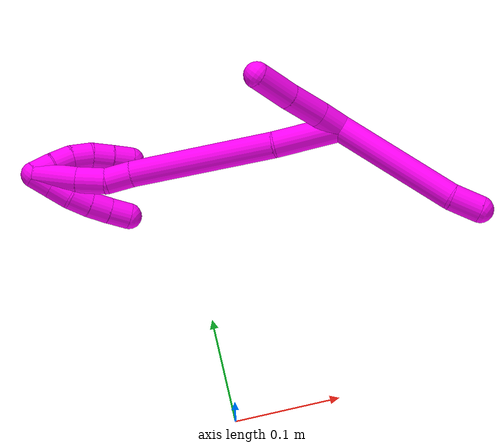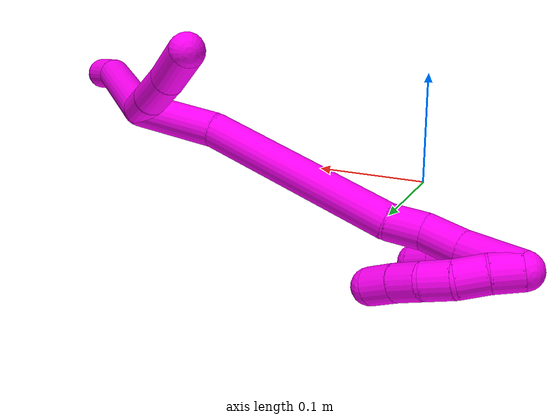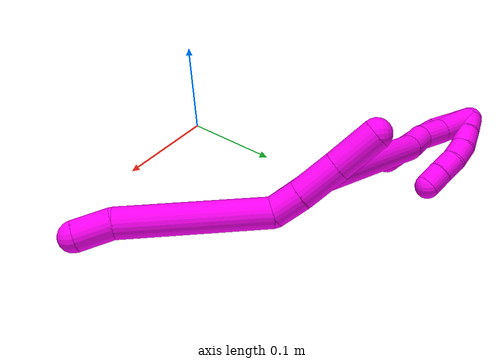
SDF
<sdf version="1.7">
 <world name="default">
  <model name="photoneo_s_sensor">
   <static>1</static>
   <pose>0 0 2 1.57079 1.57079 3.14159</pose>
   <link name="link">
    <inertial><mass>0.1</mass></inertial>
    <sensor name="sensor" type="depth">
     <update_rate>30</update_rate>
     <camera>
      <horizontal_fov>1.22</horizontal_fov>
      <image><width>1920</width><height>1200</height><format>B8G8R8</format></image>
      <clip><near>0.1</near><far>4</far></clip>
      <depth_camera><output>points</output></depth_camera>
     </camera>
     <plugin name="camera_plugin" filename="libgazebo_ros_depth_camera.so">
      <baseline>0.2</baseline>
      <alwaysOn>1</alwaysOn>
      <updateRate>0.0</updateRate>
      <cameraName>camera_ir</cameraName>
      <imageTopicName>/camera/color/image_raw</imageTopicName>
      <cameraInfoTopicName>/camera/color/camera_info</cameraInfoTopicName>
      <depthImageTopicName>/camera/depth/image_raw</depthImageTopicName>
      <depthImageCameraInfoTopicName>/camera/depth/camera_info</depthImageCameraInfoTopicName>
      <pointCloudTopicName>/camera/depth/points</pointCloudTopicName>
      <frameName>fr_optical</frameName>
      <pointCloudCutoff>0.1</pointCloudCutoff>
      <pointCloudCutoffMax>2.0</pointCloudCutoffMax>
      <distortionK1>0</distortionK1>
      <distortionK2>0</distortionK2>
      <distortionK3>0</distortionK3>
      <distortionT1>0</distortionT1>
      <distortionT2>0</distortionT2>
      <CxPrime>0</CxPrime>
      <Cx>0</Cx>
      <Cy>0</Cy>
      <focalLength>0</focalLength>
      <hackBaseline>0</hackBaseline>
     </plugin>
    </sensor>
   </link>
  </model>
  <model name="bin">
   <static>1</static>
   <link name="bottom">
    <collision name="collision-bottom">
     <pose>0 0 -0.01 0 -0 0</pose>
     <geometry><box><size>0.8 0.6 0.02</size></box></geometry>
     <surface>
      <friction><ode><mu>100</mu><mu2>100</mu2></ode></friction>
      <contact><collide_bitmask>65535</collide_bitmask></contact>
     </surface>
    </collision>
   </link>
   <link name="west_wall">
    <collision name="collision-west_wall">
     <pose>-0.41 0 0.1 0 -0 0</pose>
     <geometry><box><size>0.02 0.6 0.2</size></box></geometry>
     <surface>
      <friction><ode><mu>100</mu><mu2>100</mu2></ode></friction>
      <contact><collide_bitmask>65535</collide_bitmask></contact>
     </surface>
    </collision>
   </link>
   <link name="east_wall">
    <collision name="collision-east_wall">
     <pose>0.41 0 0.1 0 -0 0</pose>
     <geometry><box><size>0.02 0.6 0.2</size></box></geometry>
     <surface>
      <friction><ode><mu>100</mu><mu2>100</mu2></ode></friction>
      <contact><collide_bitmask>65535</collide_bitmask></contact>
     </surface>
    </collision>
   </link>
   <link name="south_wall">
    <collision name="collision-south_wall">
     <pose>0 -0.31 0.1 0 -0 0</pose>
     <geometry><box><size>0.8 0.02 0.2</size></box></geometry>
     <surface>
      <friction><ode><mu>100</mu><mu2>100</mu2></ode></friction>
      <contact><collide_bitmask>65535</collide_bitmask></contact>
     </surface>
    </collision>
   </link>
   <link name="north_wall">
    <collision name="collision-north_wall">
     <pose>0 0.31 0.1 0 -0 0</pose>
     <geometry><box><size>0.8 0.02 0.2</size></box></geometry>
     <surface>
      <friction><ode><mu>100</mu><mu2>100</mu2></ode></friction>
      <contact><collide_bitmask>65535</collide_bitmask></contact>
     </surface>
    </collision>
   </link>
  </model>
  <model name="10">
   <static>0</static>
   <link name="10">
    <collision name="collision-cylinder-e_1_2_8">
     <pose>-0.001011 -0.006087 -0.060129 3.04071 -0.01672 -0.328212</pose>
     <geometry><cylinder><radius>0.0125</radius><length>0.12089</length></cylinder></geometry>
     <surface>
      <friction><ode><mu>1.16</mu><mu2>1.16</mu2><slip1>0</slip1><slip2>0</slip2></ode></friction>
      <contact><ode><kp>1e+06</kp><kd>1</kd><max_vel>0</max_vel><min_depth>0.001</min_depth></ode></contact>
     </surface>
    </collision>
    <visual name="visual-cylinder-e_1_2_8">
     <pose>-0.001011 -0.006087 -0.060129 3.04071 -0.01672 -0.328212</pose>
     <geometry><cylinder><radius>0.0125</radius><length>0.12089</length></cylinder></geometry>
     <material><ambient>1 0 0.964706 1</ambient></material>
    </visual>
    <collision name="collision-cylinder-e_2_8_6">
     <pose>0.001606 -0.013552 -0.134287 3.04364 0.251844 2.40278</pose>
     <geometry><cylinder><radius>0.0125</radius><length>0.02911</length></cylinder></geometry>
     <surface>
      <friction><ode><mu>1.16</mu><mu2>1.16</mu2><slip1>0</slip1><slip2>0</slip2></ode></friction>
      <contact><ode><kp>1e+06</kp><kd>1</kd><max_vel>0</max_vel><min_depth>0.001</min_depth></ode></contact>
     </surface>
    </collision>
    <visual name="visual-cylinder-e_2_8_6">
     <pose>0.001606 -0.013552 -0.134287 3.04364 0.251844 2.40278</pose>
     <geometry><cylinder><radius>0.0125</radius><length>0.02911</length></cylinder></geometry>
     <material><ambient>1 0 0.964706 1</ambient></material>
    </visual>
    <collision name="collision-cylinder-e_1_2_9">
     <pose>-0.005309 -0.002892 0.011038 0.256263 -0.435445 -0.05699</pose>
     <geometry><cylinder><radius>0.0125</radius><length>0.025171</length></cylinder></geometry>
     <surface>
      <friction><ode><mu>1.16</mu><mu2>1.16</mu2><slip1>0</slip1><slip2>0</slip2></ode></friction>
      <contact><ode><kp>1e+06</kp><kd>1</kd><max_vel>0</max_vel><min_depth>0.001</min_depth></ode></contact>
     </surface>
    </collision>
    <visual name="visual-cylinder-e_1_2_9">
     <pose>-0.005309 -0.002892 0.011038 0.256263 -0.435445 -0.05699</pose>
     <geometry><cylinder><radius>0.0125</radius><length>0.025171</length></cylinder></geometry>
     <material><ambient>1 0 0.964706 1</ambient></material>
    </visual>
    <collision name="collision-cylinder-e_2_9_10">
     <pose>-0.019501 -0.010116 0.036934 0.283644 -0.521119 -0.0761</pose>
     <geometry><cylinder><radius>0.0125</radius><length>0.035689</length></cylinder></geometry>
     <surface>
      <friction><ode><mu>1.16</mu><mu2>1.16</mu2><slip1>0</slip1><slip2>0</slip2></ode></friction>
      <contact><ode><kp>1e+06</kp><kd>1</kd><max_vel>0</max_vel><min_depth>0.001</min_depth></ode></contact>
     </surface>
    </collision>
    <visual name="visual-cylinder-e_2_9_10">
     <pose>-0.019501 -0.010116 0.036934 0.283644 -0.521119 -0.0761</pose>
     <geometry><cylinder><radius>0.0125</radius><length>0.035689</length></cylinder></geometry>
     <material><ambient>1 0 0.964706 1</ambient></material>
    </visual>
    <collision name="collision-cylinder-e_3_10_5">
     <pose>-0.038135 -0.020358 0.067697 0.35583 -0.521506 -0.095886</pose>
     <geometry><cylinder><radius>0.0125</radius><length>0.03914</length></cylinder></geometry>
     <surface>
      <friction><ode><mu>1.16</mu><mu2>1.16</mu2><slip1>0</slip1><slip2>0</slip2></ode></friction>
      <contact><ode><kp>1e+06</kp><kd>1</kd><max_vel>0</max_vel><min_depth>0.001</min_depth></ode></contact>
     </surface>
    </collision>
    <visual name="visual-cylinder-e_3_10_5">
     <pose>-0.038135 -0.020358 0.067697 0.35583 -0.521506 -0.095886</pose>
     <geometry><cylinder><radius>0.0125</radius><length>0.03914</length></cylinder></geometry>
     <material><ambient>1 0 0.964706 1</ambient></material>
    </visual>
    <collision name="collision-cylinder-e_1_2_11">
     <pose>-0.014846 0.019079 0.020039 -0.760847 -0.492456 0.200341</pose>
     <geometry><cylinder><radius>0.0125</radius><length>0.0628</length></cylinder></geometry>
     <surface>
      <friction><ode><mu>1.16</mu><mu2>1.16</mu2><slip1>0</slip1><slip2>0</slip2></ode></friction>
      <contact><ode><kp>1e+06</kp><kd>1</kd><max_vel>0</max_vel><min_depth>0.001</min_depth></ode></contact>
     </surface>
    </collision>
    <visual name="visual-cylinder-e_1_2_11">
     <pose>-0.014846 0.019079 0.020039 -0.760847 -0.492456 0.200341</pose>
     <geometry><cylinder><radius>0.0125</radius><length>0.0628</length></cylinder></geometry>
     <material><ambient>1 0 0.964706 1</ambient></material>
    </visual>
    <collision name="collision-cylinder-e_2_11_12">
     <pose>-0.050529 0.085938 0.087937 -0.78459 -0.298899 0.124435</pose>
     <geometry><cylinder><radius>0.0125</radius><length>0.141529</length></cylinder></geometry>
     <surface>
      <friction><ode><mu>1.16</mu><mu2>1.16</mu2><slip1>0</slip1><slip2>0</slip2></ode></friction>
      <contact><ode><kp>1e+06</kp><kd>1</kd><max_vel>0</max_vel><min_depth>0.001</min_depth></ode></contact>
     </surface>
    </collision>
    <visual name="visual-cylinder-e_2_11_12">
     <pose>-0.050529 0.085938 0.087937 -0.78459 -0.298899 0.124435</pose>
     <geometry><cylinder><radius>0.0125</radius><length>0.141529</length></cylinder></geometry>
     <material><ambient>1 0 0.964706 1</ambient></material>
    </visual>
    <collision name="collision-cylinder-e_3_12_13">
     <pose>-0.077765 0.141368 0.14361 -0.774645 -0.529336 0.220224</pose>
     <geometry><cylinder><radius>0.0125</radius><length>0.02534</length></cylinder></geometry>
     <surface>
      <friction><ode><mu>1.16</mu><mu2>1.16</mu2><slip1>0</slip1><slip2>0</slip2></ode></friction>
      <contact><ode><kp>1e+06</kp><kd>1</kd><max_vel>0</max_vel><min_depth>0.001</min_depth></ode></contact>
     </surface>
    </collision>
    <visual name="visual-cylinder-e_3_12_13">
     <pose>-0.077765 0.141368 0.14361 -0.774645 -0.529336 0.220224</pose>
     <geometry><cylinder><radius>0.0125</radius><length>0.02534</length></cylinder></geometry>
     <material><ambient>1 0 0.964706 1</ambient></material>
    </visual>
    <collision name="collision-cylinder-e_4_13_14">
     <pose>-0.088164 0.155828 0.163299 -0.520763 -0.284362 0.07624</pose>
     <geometry><cylinder><radius>0.0125</radius><length>0.02852</length></cylinder></geometry>
     <surface>
      <friction><ode><mu>1.16</mu><mu2>1.16</mu2><slip1>0</slip1><slip2>0</slip2></ode></friction>
      <contact><ode><kp>1e+06</kp><kd>1</kd><max_vel>0</max_vel><min_depth>0.001</min_depth></ode></contact>
     </surface>
    </collision>
    <visual name="visual-cylinder-e_4_13_14">
     <pose>-0.088164 0.155828 0.163299 -0.520763 -0.284362 0.07624</pose>
     <geometry><cylinder><radius>0.0125</radius><length>0.02852</length></cylinder></geometry>
     <material><ambient>1 0 0.964706 1</ambient></material>
    </visual>
    <collision name="collision-cylinder-e_5_14_1">
     <pose>-0.099018 0.170375 0.193343 -0.402525 -0.334006 0.068759</pose>
     <geometry><cylinder><radius>0.0125</radius><length>0.041811</length></cylinder></geometry>
     <surface>
      <friction><ode><mu>1.16</mu><mu2>1.16</mu2><slip1>0</slip1><slip2>0</slip2></ode></friction>
      <contact><ode><kp>1e+06</kp><kd>1</kd><max_vel>0</max_vel><min_depth>0.001</min_depth></ode></contact>
     </surface>
    </collision>
    <visual name="visual-cylinder-e_5_14_1">
     <pose>-0.099018 0.170375 0.193343 -0.402525 -0.334006 0.068759</pose>
     <geometry><cylinder><radius>0.0125</radius><length>0.041811</length></cylinder></geometry>
     <material><ambient>1 0 0.964706 1</ambient></material>
    </visual>
    <collision name="collision-cylinder-e_1_1_15">
     <pose>-0.097942 0.173445 0.207596 2.26932 0.915542 1.62629</pose>
     <geometry><cylinder><radius>0.0125</radius><length>0.02</length></cylinder></geometry>
     <surface>
      <friction><ode><mu>1.16</mu><mu2>1.16</mu2><slip1>0</slip1><slip2>0</slip2></ode></friction>
      <contact><ode><kp>1e+06</kp><kd>1</kd><max_vel>0</max_vel><min_depth>0.001</min_depth></ode></contact>
     </surface>
    </collision>
    <visual name="visual-cylinder-e_1_1_15">
     <pose>-0.097942 0.173445 0.207596 2.26932 0.915542 1.62629</pose>
     <geometry><cylinder><radius>0.0125</radius><length>0.02</length></cylinder></geometry>
     <material><ambient>1 0 0.964706 1</ambient></material>
    </visual>
    <collision name="collision-cylinder-e_2_15_16">
     <pose>-0.081684 0.165171 0.199481 2.43145 0.98438 1.93159</pose>
     <geometry><cylinder><radius>0.0125</radius><length>0.02</length></cylinder></geometry>
     <surface>
      <friction><ode><mu>1.16</mu><mu2>1.16</mu2><slip1>0</slip1><slip2>0</slip2></ode></friction>
      <contact><ode><kp>1e+06</kp><kd>1</kd><max_vel>0</max_vel><min_depth>0.001</min_depth></ode></contact>
     </surface>
    </collision>
    <visual name="visual-cylinder-e_2_15_16">
     <pose>-0.081684 0.165171 0.199481 2.43145 0.98438 1.93159</pose>
     <geometry><cylinder><radius>0.0125</radius><length>0.02</length></cylinder></geometry>
     <material><ambient>1 0 0.964706 1</ambient></material>
    </visual>
    <collision name="collision-cylinder-e_3_16_17">
     <pose>-0.066336 0.158513 0.188849 2.69901 0.778048 2.13769</pose>
     <geometry><cylinder><radius>0.0125</radius><length>0.02</length></cylinder></geometry>
     <surface>
      <friction><ode><mu>1.16</mu><mu2>1.16</mu2><slip1>0</slip1><slip2>0</slip2></ode></friction>
      <contact><ode><kp>1e+06</kp><kd>1</kd><max_vel>0</max_vel><min_depth>0.001</min_depth></ode></contact>
     </surface>
    </collision>
    <visual name="visual-cylinder-e_3_16_17">
     <pose>-0.066336 0.158513 0.188849 2.69901 0.778048 2.13769</pose>
     <geometry><cylinder><radius>0.0125</radius><length>0.02</length></cylinder></geometry>
     <material><ambient>1 0 0.964706 1</ambient></material>
    </visual>
    <collision name="collision-cylinder-e_4_17_18">
     <pose>-0.05327 0.15408 0.174568 2.96717 0.649376 2.63333</pose>
     <geometry><cylinder><radius>0.0125</radius><length>0.02</length></cylinder></geometry>
     <surface>
      <friction><ode><mu>1.16</mu><mu2>1.16</mu2><slip1>0</slip1><slip2>0</slip2></ode></friction>
      <contact><ode><kp>1e+06</kp><kd>1</kd><max_vel>0</max_vel><min_depth>0.001</min_depth></ode></contact>
     </surface>
    </collision>
    <visual name="visual-cylinder-e_4_17_18">
     <pose>-0.05327 0.15408 0.174568 2.96717 0.649376 2.63333</pose>
     <geometry><cylinder><radius>0.0125</radius><length>0.02</length></cylinder></geometry>
     <material><ambient>1 0 0.964706 1</ambient></material>
    </visual>
    <collision name="collision-cylinder-e_5_18_4">
     <pose>-0.040886 0.151846 0.159036 3.03121 0.686327 2.83478</pose>
     <geometry><cylinder><radius>0.0125</radius><length>0.02</length></cylinder></geometry>
     <surface>
      <friction><ode><mu>1.16</mu><mu2>1.16</mu2><slip1>0</slip1><slip2>0</slip2></ode></friction>
      <contact><ode><kp>1e+06</kp><kd>1</kd><max_vel>0</max_vel><min_depth>0.001</min_depth></ode></contact>
     </surface>
    </collision>
    <visual name="visual-cylinder-e_5_18_4">
     <pose>-0.040886 0.151846 0.159036 3.03121 0.686327 2.83478</pose>
     <geometry><cylinder><radius>0.0125</radius><length>0.02</length></cylinder></geometry>
     <material><ambient>1 0 0.964706 1</ambient></material>
    </visual>
    <collision name="collision-cylinder-e_1_1_19">
     <pose>-0.10382 0.178455 0.201734 -3.10654 0.206587 -2.80655</pose>
     <geometry><cylinder><radius>0.0125</radius><length>0.02</length></cylinder></geometry>
     <surface>
      <friction><ode><mu>1.16</mu><mu2>1.16</mu2><slip1>0</slip1><slip2>0</slip2></ode></friction>
      <contact><ode><kp>1e+06</kp><kd>1</kd><max_vel>0</max_vel><min_depth>0.001</min_depth></ode></contact>
     </surface>
    </collision>
    <visual name="visual-cylinder-e_1_1_19">
     <pose>-0.10382 0.178455 0.201734 -3.10654 0.206587 -2.80655</pose>
     <geometry><cylinder><radius>0.0125</radius><length>0.02</length></cylinder></geometry>
     <material><ambient>1 0 0.964706 1</ambient></material>
    </visual>
    <collision name="collision-cylinder-e_2_19_20">
     <pose>-0.099788 0.179008 0.182153 -3.12013 0.199423 -2.92784</pose>
     <geometry><cylinder><radius>0.0125</radius><length>0.02</length></cylinder></geometry>
     <surface>
      <friction><ode><mu>1.16</mu><mu2>1.16</mu2><slip1>0</slip1><slip2>0</slip2></ode></friction>
      <contact><ode><kp>1e+06</kp><kd>1</kd><max_vel>0</max_vel><min_depth>0.001</min_depth></ode></contact>
     </surface>
    </collision>
    <visual name="visual-cylinder-e_2_19_20">
     <pose>-0.099788 0.179008 0.182153 -3.12013 0.199423 -2.92784</pose>
     <geometry><cylinder><radius>0.0125</radius><length>0.02</length></cylinder></geometry>
     <material><ambient>1 0 0.964706 1</ambient></material>
    </visual>
    <collision name="collision-cylinder-e_3_20_21">
     <pose>-0.093696 0.179738 0.163252 -3.08454 0.423656 -2.87777</pose>
     <geometry><cylinder><radius>0.0125</radius><length>0.02</length></cylinder></geometry>
     <surface>
      <friction><ode><mu>1.16</mu><mu2>1.16</mu2><slip1>0</slip1><slip2>0</slip2></ode></friction>
      <contact><ode><kp>1e+06</kp><kd>1</kd><max_vel>0</max_vel><min_depth>0.001</min_depth></ode></contact>
     </surface>
    </collision>
    <visual name="visual-cylinder-e_3_20_21">
     <pose>-0.093696 0.179738 0.163252 -3.08454 0.423656 -2.87777</pose>
     <geometry><cylinder><radius>0.0125</radius><length>0.02</length></cylinder></geometry>
     <material><ambient>1 0 0.964706 1</ambient></material>
    </visual>
    <collision name="collision-cylinder-e_4_21_22">
     <pose>-0.084926 0.180082 0.145304 3.12173 0.484656 3.06126</pose>
     <geometry><cylinder><radius>0.0125</radius><length>0.02</length></cylinder></geometry>
     <surface>
      <friction><ode><mu>1.16</mu><mu2>1.16</mu2><slip1>0</slip1><slip2>0</slip2></ode></friction>
      <contact><ode><kp>1e+06</kp><kd>1</kd><max_vel>0</max_vel><min_depth>0.001</min_depth></ode></contact>
     </surface>
    </collision>
    <visual name="visual-cylinder-e_4_21_22">
     <pose>-0.084926 0.180082 0.145304 3.12173 0.484656 3.06126</pose>
     <geometry><cylinder><radius>0.0125</radius><length>0.02</length></cylinder></geometry>
     <material><ambient>1 0 0.964706 1</ambient></material>
    </visual>
    <collision name="collision-cylinder-e_5_22_3">
     <pose>-0.075346 0.179384 0.127768 3.08155 0.514481 2.91429</pose>
     <geometry><cylinder><radius>0.0125</radius><length>0.02</length></cylinder></geometry>
     <surface>
      <friction><ode><mu>1.16</mu><mu2>1.16</mu2><slip1>0</slip1><slip2>0</slip2></ode></friction>
      <contact><ode><kp>1e+06</kp><kd>1</kd><max_vel>0</max_vel><min_depth>0.001</min_depth></ode></contact>
     </surface>
    </collision>
    <visual name="visual-cylinder-e_5_22_3">
     <pose>-0.075346 0.179384 0.127768 3.08155 0.514481 2.91429</pose>
     <geometry><cylinder><radius>0.0125</radius><length>0.02</length></cylinder></geometry>
     <material><ambient>1 0 0.964706 1</ambient></material>
    </visual>
    <collision name="collision-sphere-3">
     <pose>-0.070425 0.178862 0.119078 0 -0 0</pose>
     <geometry><sphere><radius>0.0125</radius></sphere></geometry>
     <surface>
      <friction><ode><mu>1.16</mu><mu2>1.16</mu2><slip1>0</slip1><slip2>0</slip2></ode></friction>
      <contact><ode><kp>1e+06</kp><kd>1</kd><max_vel>0</max_vel><min_depth>0.001</min_depth></ode></contact>
     </surface>
    </collision>
    <visual name="visual-sphere-3">
     <pose>-0.070425 0.178862 0.119078 0 -0 0</pose>
     <geometry><sphere><radius>0.0125</radius></sphere></geometry>
     <material><ambient>1 0 0.964706 1</ambient></material>
    </visual>
    <collision name="collision-sphere-22">
     <pose>-0.080267 0.179906 0.136458 0 -0 0</pose>
     <geometry><sphere><radius>0.0125</radius></sphere></geometry>
     <surface>
      <friction><ode><mu>1.16</mu><mu2>1.16</mu2><slip1>0</slip1><slip2>0</slip2></ode></friction>
      <contact><ode><kp>1e+06</kp><kd>1</kd><max_vel>0</max_vel><min_depth>0.001</min_depth></ode></contact>
     </surface>
    </collision>
    <visual name="visual-sphere-22">
     <pose>-0.080267 0.179906 0.136458 0 -0 0</pose>
     <geometry><sphere><radius>0.0125</radius></sphere></geometry>
     <material><ambient>1 0 0.964706 1</ambient></material>
    </visual>
    <collision name="collision-sphere-21">
     <pose>-0.089585 0.180258 0.154151 0 -0 0</pose>
     <geometry><sphere><radius>0.0125</radius></sphere></geometry>
     <surface>
      <friction><ode><mu>1.16</mu><mu2>1.16</mu2><slip1>0</slip1><slip2>0</slip2></ode></friction>
      <contact><ode><kp>1e+06</kp><kd>1</kd><max_vel>0</max_vel><min_depth>0.001</min_depth></ode></contact>
     </surface>
    </collision>
    <visual name="visual-sphere-21">
     <pose>-0.089585 0.180258 0.154151 0 -0 0</pose>
     <geometry><sphere><radius>0.0125</radius></sphere></geometry>
     <material><ambient>1 0 0.964706 1</ambient></material>
    </visual>
    <collision name="collision-sphere-20">
     <pose>-0.097807 0.179218 0.172353 0 -0 0</pose>
     <geometry><sphere><radius>0.0125</radius></sphere></geometry>
     <surface>
      <friction><ode><mu>1.16</mu><mu2>1.16</mu2><slip1>0</slip1><slip2>0</slip2></ode></friction>
      <contact><ode><kp>1e+06</kp><kd>1</kd><max_vel>0</max_vel><min_depth>0.001</min_depth></ode></contact>
     </surface>
    </collision>
    <visual name="visual-sphere-20">
     <pose>-0.097807 0.179218 0.172353 0 -0 0</pose>
     <geometry><sphere><radius>0.0125</radius></sphere></geometry>
     <material><ambient>1 0 0.964706 1</ambient></material>
    </visual>
    <collision name="collision-sphere-19">
     <pose>-0.101769 0.178798 0.191952 0 -0 0</pose>
     <geometry><sphere><radius>0.0125</radius></sphere></geometry>
     <surface>
      <friction><ode><mu>1.16</mu><mu2>1.16</mu2><slip1>0</slip1><slip2>0</slip2></ode></friction>
      <contact><ode><kp>1e+06</kp><kd>1</kd><max_vel>0</max_vel><min_depth>0.001</min_depth></ode></contact>
     </surface>
    </collision>
    <visual name="visual-sphere-19">
     <pose>-0.101769 0.178798 0.191952 0 -0 0</pose>
     <geometry><sphere><radius>0.0125</radius></sphere></geometry>
     <material><ambient>1 0 0.964706 1</ambient></material>
    </visual>
    <collision name="collision-sphere-5">
     <pose>-0.047884 -0.026269 0.083603 0 -0 0</pose>
     <geometry><sphere><radius>0.0125</radius></sphere></geometry>
     <surface>
      <friction><ode><mu>1.16</mu><mu2>1.16</mu2><slip1>0</slip1><slip2>0</slip2></ode></friction>
      <contact><ode><kp>1e+06</kp><kd>1</kd><max_vel>0</max_vel><min_depth>0.001</min_depth></ode></contact>
     </surface>
    </collision>
    <visual name="visual-sphere-5">
     <pose>-0.047884 -0.026269 0.083603 0 -0 0</pose>
     <geometry><sphere><radius>0.0125</radius></sphere></geometry>
     <material><ambient>1 0 0.964706 1</ambient></material>
    </visual>
    <collision name="collision-sphere-10">
     <pose>-0.028385 -0.014447 0.051792 0 -0 0</pose>
     <geometry><sphere><radius>0.0125</radius></sphere></geometry>
     <surface>
      <friction><ode><mu>1.16</mu><mu2>1.16</mu2><slip1>0</slip1><slip2>0</slip2></ode></friction>
      <contact><ode><kp>1e+06</kp><kd>1</kd><max_vel>0</max_vel><min_depth>0.001</min_depth></ode></contact>
     </surface>
    </collision>
    <visual name="visual-sphere-10">
     <pose>-0.028385 -0.014447 0.051792 0 -0 0</pose>
     <geometry><sphere><radius>0.0125</radius></sphere></geometry>
     <material><ambient>1 0 0.964706 1</ambient></material>
    </visual>
    <collision name="collision-sphere-6">
     <pose>0.005233 -0.01493 -0.148315 0 -0 0</pose>
     <geometry><sphere><radius>0.0125</radius></sphere></geometry>
     <surface>
      <friction><ode><mu>1.16</mu><mu2>1.16</mu2><slip1>0</slip1><slip2>0</slip2></ode></friction>
      <contact><ode><kp>1e+06</kp><kd>1</kd><max_vel>0</max_vel><min_depth>0.001</min_depth></ode></contact>
     </surface>
    </collision>
    <visual name="visual-sphere-6">
     <pose>0.005233 -0.01493 -0.148315 0 -0 0</pose>
     <geometry><sphere><radius>0.0125</radius></sphere></geometry>
     <material><ambient>1 0 0.964706 1</ambient></material>
    </visual>
    <collision name="collision-sphere-9">
     <pose>-0.010618 -0.005785 0.022077 0 -0 0</pose>
     <geometry><sphere><radius>0.0125</radius></sphere></geometry>
     <surface>
      <friction><ode><mu>1.16</mu><mu2>1.16</mu2><slip1>0</slip1><slip2>0</slip2></ode></friction>
      <contact><ode><kp>1e+06</kp><kd>1</kd><max_vel>0</max_vel><min_depth>0.001</min_depth></ode></contact>
     </surface>
    </collision>
    <visual name="visual-sphere-9">
     <pose>-0.010618 -0.005785 0.022077 0 -0 0</pose>
     <geometry><sphere><radius>0.0125</radius></sphere></geometry>
     <material><ambient>1 0 0.964706 1</ambient></material>
    </visual>
    <collision name="collision-sphere-2">
     <geometry><sphere><radius>0.0125</radius></sphere></geometry>
     <surface>
      <friction><ode><mu>1.16</mu><mu2>1.16</mu2><slip1>0</slip1><slip2>0</slip2></ode></friction>
      <contact><ode><kp>1e+06</kp><kd>1</kd><max_vel>0</max_vel><min_depth>0.001</min_depth></ode></contact>
     </surface>
    </collision>
    <visual name="visual-sphere-2">
     <geometry><sphere><radius>0.0125</radius></sphere></geometry>
     <material><ambient>1 0 0.964706 1</ambient></material>
    </visual>
    <collision name="collision-sphere-8">
     <pose>-0.002021 -0.012173 -0.120258 0 -0 0</pose>
     <geometry><sphere><radius>0.0125</radius></sphere></geometry>
     <surface>
      <friction><ode><mu>1.16</mu><mu2>1.16</mu2><slip1>0</slip1><slip2>0</slip2></ode></friction>
      <contact><ode><kp>1e+06</kp><kd>1</kd><max_vel>0</max_vel><min_depth>0.001</min_depth></ode></contact>
     </surface>
    </collision>
    <visual name="visual-sphere-8">
     <pose>-0.002021 -0.012173 -0.120258 0 -0 0</pose>
     <geometry><sphere><radius>0.0125</radius></sphere></geometry>
     <material><ambient>1 0 0.964706 1</ambient></material>
    </visual>
    <collision name="collision-sphere-11">
     <pose>-0.029691 0.038158 0.040079 0 -0 0</pose>
     <geometry><sphere><radius>0.0125</radius></sphere></geometry>
     <surface>
      <friction><ode><mu>1.16</mu><mu2>1.16</mu2><slip1>0</slip1><slip2>0</slip2></ode></friction>
      <contact><ode><kp>1e+06</kp><kd>1</kd><max_vel>0</max_vel><min_depth>0.001</min_depth></ode></contact>
     </surface>
    </collision>
    <visual name="visual-sphere-11">
     <pose>-0.029691 0.038158 0.040079 0 -0 0</pose>
     <geometry><sphere><radius>0.0125</radius></sphere></geometry>
     <material><ambient>1 0 0.964706 1</ambient></material>
    </visual>
    <collision name="collision-sphere-12">
     <pose>-0.071367 0.133719 0.135795 0 -0 0</pose>
     <geometry><sphere><radius>0.0125</radius></sphere></geometry>
     <surface>
      <friction><ode><mu>1.16</mu><mu2>1.16</mu2><slip1>0</slip1><slip2>0</slip2></ode></friction>
      <contact><ode><kp>1e+06</kp><kd>1</kd><max_vel>0</max_vel><min_depth>0.001</min_depth></ode></contact>
     </surface>
    </collision>
    <visual name="visual-sphere-12">
     <pose>-0.071367 0.133719 0.135795 0 -0 0</pose>
     <geometry><sphere><radius>0.0125</radius></sphere></geometry>
     <material><ambient>1 0 0.964706 1</ambient></material>
    </visual>
    <collision name="collision-sphere-13">
     <pose>-0.084163 0.149018 0.151426 0 -0 0</pose>
     <geometry><sphere><radius>0.0125</radius></sphere></geometry>
     <surface>
      <friction><ode><mu>1.16</mu><mu2>1.16</mu2><slip1>0</slip1><slip2>0</slip2></ode></friction>
      <contact><ode><kp>1e+06</kp><kd>1</kd><max_vel>0</max_vel><min_depth>0.001</min_depth></ode></contact>
     </surface>
    </collision>
    <visual name="visual-sphere-13">
     <pose>-0.084163 0.149018 0.151426 0 -0 0</pose>
     <geometry><sphere><radius>0.0125</radius></sphere></geometry>
     <material><ambient>1 0 0.964706 1</ambient></material>
    </visual>
    <collision name="collision-sphere-14">
     <pose>-0.092164 0.162638 0.175172 0 -0 0</pose>
     <geometry><sphere><radius>0.0125</radius></sphere></geometry>
     <surface>
      <friction><ode><mu>1.16</mu><mu2>1.16</mu2><slip1>0</slip1><slip2>0</slip2></ode></friction>
      <contact><ode><kp>1e+06</kp><kd>1</kd><max_vel>0</max_vel><min_depth>0.001</min_depth></ode></contact>
     </surface>
    </collision>
    <visual name="visual-sphere-14">
     <pose>-0.092164 0.162638 0.175172 0 -0 0</pose>
     <geometry><sphere><radius>0.0125</radius></sphere></geometry>
     <material><ambient>1 0 0.964706 1</ambient></material>
    </visual>
    <collision name="collision-sphere-1">
     <pose>-0.105871 0.178112 0.211515 0 -0 0</pose>
     <geometry><sphere><radius>0.0125</radius></sphere></geometry>
     <surface>
      <friction><ode><mu>1.16</mu><mu2>1.16</mu2><slip1>0</slip1><slip2>0</slip2></ode></friction>
      <contact><ode><kp>1e+06</kp><kd>1</kd><max_vel>0</max_vel><min_depth>0.001</min_depth></ode></contact>
     </surface>
    </collision>
    <visual name="visual-sphere-1">
     <pose>-0.105871 0.178112 0.211515 0 -0 0</pose>
     <geometry><sphere><radius>0.0125</radius></sphere></geometry>
     <material><ambient>1 0 0.964706 1</ambient></material>
    </visual>
    <collision name="collision-sphere-18">
     <pose>-0.047223 0.152698 0.166725 0 -0 0</pose>
     <geometry><sphere><radius>0.0125</radius></sphere></geometry>
     <surface>
      <friction><ode><mu>1.16</mu><mu2>1.16</mu2><slip1>0</slip1><slip2>0</slip2></ode></friction>
      <contact><ode><kp>1e+06</kp><kd>1</kd><max_vel>0</max_vel><min_depth>0.001</min_depth></ode></contact>
     </surface>
    </collision>
    <visual name="visual-sphere-18">
     <pose>-0.047223 0.152698 0.166725 0 -0 0</pose>
     <geometry><sphere><radius>0.0125</radius></sphere></geometry>
     <material><ambient>1 0 0.964706 1</ambient></material>
    </visual>
    <collision name="collision-sphere-15">
     <pose>-0.090013 0.168779 0.203677 0 -0 0</pose>
     <geometry><sphere><radius>0.0125</radius></sphere></geometry>
     <surface>
      <friction><ode><mu>1.16</mu><mu2>1.16</mu2><slip1>0</slip1><slip2>0</slip2></ode></friction>
      <contact><ode><kp>1e+06</kp><kd>1</kd><max_vel>0</max_vel><min_depth>0.001</min_depth></ode></contact>
     </surface>
    </collision>
    <visual name="visual-sphere-15">
     <pose>-0.090013 0.168779 0.203677 0 -0 0</pose>
     <geometry><sphere><radius>0.0125</radius></sphere></geometry>
     <material><ambient>1 0 0.964706 1</ambient></material>
    </visual>
    <collision name="collision-sphere-16">
     <pose>-0.073355 0.161563 0.195285 0 -0 0</pose>
     <geometry><sphere><radius>0.0125</radius></sphere></geometry>
     <surface>
      <friction><ode><mu>1.16</mu><mu2>1.16</mu2><slip1>0</slip1><slip2>0</slip2></ode></friction>
      <contact><ode><kp>1e+06</kp><kd>1</kd><max_vel>0</max_vel><min_depth>0.001</min_depth></ode></contact>
     </surface>
    </collision>
    <visual name="visual-sphere-16">
     <pose>-0.073355 0.161563 0.195285 0 -0 0</pose>
     <geometry><sphere><radius>0.0125</radius></sphere></geometry>
     <material><ambient>1 0 0.964706 1</ambient></material>
    </visual>
    <collision name="collision-sphere-17">
     <pose>-0.059317 0.155462 0.182412 0 -0 0</pose>
     <geometry><sphere><radius>0.0125</radius></sphere></geometry>
     <surface>
      <friction><ode><mu>1.16</mu><mu2>1.16</mu2><slip1>0</slip1><slip2>0</slip2></ode></friction>
      <contact><ode><kp>1e+06</kp><kd>1</kd><max_vel>0</max_vel><min_depth>0.001</min_depth></ode></contact>
     </surface>
    </collision>
    <visual name="visual-sphere-17">
     <pose>-0.059317 0.155462 0.182412 0 -0 0</pose>
     <geometry><sphere><radius>0.0125</radius></sphere></geometry>
     <material><ambient>1 0 0.964706 1</ambient></material>
    </visual>
    <collision name="collision-sphere-4">
     <pose>-0.034549 0.150994 0.151347 0 -0 0</pose>
     <geometry><sphere><radius>0.0125</radius></sphere></geometry>
     <surface>
      <friction><ode><mu>1.16</mu><mu2>1.16</mu2><slip1>0</slip1><slip2>0</slip2></ode></friction>
      <contact><ode><kp>1e+06</kp><kd>1</kd><max_vel>0</max_vel><min_depth>0.001</min_depth></ode></contact>
     </surface>
    </collision>
    <visual name="visual-sphere-4">
     <pose>-0.034549 0.150994 0.151347 0 -0 0</pose>
     <geometry><sphere><radius>0.0125</radius></sphere></geometry>
     <material><ambient>1 0 0.964706 1</ambient></material>
    </visual>
    <inertial>
     <pose>-0.046747 0.080192 0.077529 0 -0 0</pose>
     <mass>0.75</mass>
     <inertia>
      <ixx>0.000391</ixx>
      <ixy>0</ixy>
      <ixz>0</ixz>
      <iyy>8.9e-05</iyy>
      <iyz>0</iyz>
      <izz>-7.5e-05</izz>
     </inertia>
    </inertial>
   </link>
   <pose>0.151968 0.228118 0.100238 -1.49741 0.677601 0.747767</pose>
  </model>
 </world>
</sdf>
